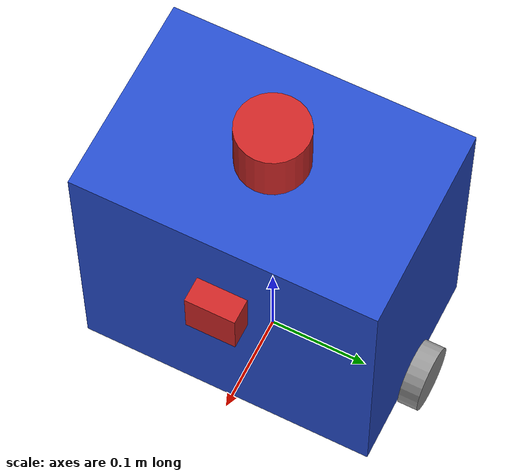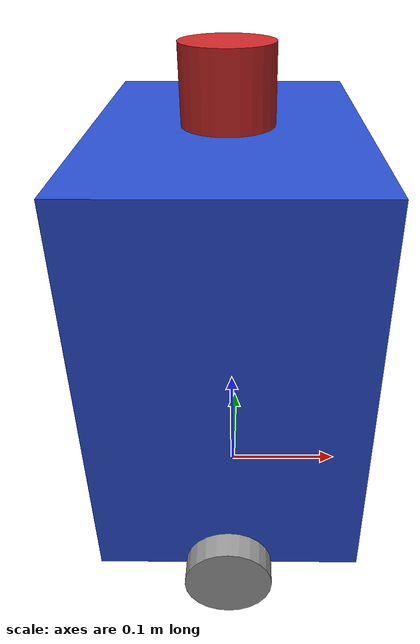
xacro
<?xml version="1.0"?>
<robot name="my_robot" xmlns:xacro="http://www.ros.org/wiki/xacro">

    <xacro:arg name="is_sim" default="true"/>
    <xacro:arg name="is_ignition" default="false"/>

    <xacro:include filename="common_properties.xacro" />
    <xacro:include filename="my_robot_homemade.xacro" />
    <xacro:include filename="robot_ros2_control.xacro" />
    <xacro:include filename="my_robot_gazebo.xacro" />

</robot>

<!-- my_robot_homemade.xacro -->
<robot xmlns:xacro="http://www.ros.org/wiki/xacro">
  <xacro:include filename="inertial_macros.xacro"/>
  <xacro:property name="base_length" value="0.20" />
  <xacro:property name="base_width" value="0.30" />
  <xacro:property name="base_height" value="0.30" />
  <xacro:property name="base_mass" value="1.0" />

  <xacro:property name="wheel_mass" value="0.3" />
  <xacro:property name="wheel_radius" value="0.033" />
  <xacro:property name="wheel_length" value="0.02" />

  <xacro:property name="caster_wheel_mass" value="0.1" />
  <xacro:property name="caster_wheel_radius" value="${wheel_radius / 2.0}" />

  <!-- BASE FOOTPRINT LINK -->
  <link name="base_footprint" />

  <!-- BASE LINK -->
  <link name="base_link">
    <visual>
      <geometry>
        <box size="${base_length} ${base_width} ${base_height}" />
      </geometry>
      <origin xyz="0 0 ${base_height / 2.0}" rpy="0 0 0" />
      <material name="blue" />
    </visual>

    <collision>
      <geometry>
        <box size="${base_length} ${base_width} ${base_height}" />
      </geometry>
      <origin xyz="0 0 ${base_height / 2.0}" rpy="0 0 0" />
    </collision>

    <inertial>
      <origin xyz="0 0 ${base_height / 2.0}" rpy="0 0 0"/>
      <mass value="${base_mass}"/>
      <inertia ixx="${base_mass / 12.0 * (base_width*base_width + base_height*base_height)}" ixy="0.0" ixz="0.0" iyy="${base_mass / 12.0 * (base_length*base_length + base_height*base_height)}" iyz="0.0" izz="${base_mass / 12.0 * (base_width*base_width + base_length*base_length)}"/>
    </inertial>

  </link>

  <!-- WHEEL MACRO -->
  <xacro:macro name="wheel_link" params="prefix">
    <link name="${prefix}_wheel_link">
      <visual>
        <geometry>
          <cylinder radius="${wheel_radius}" length="${wheel_length}" />
        </geometry>
        <origin xyz="0 0 0" rpy="${pi / 2.0} 0 0" />
        <material name="grey" />
      </visual>

      <collision>
        <geometry>
          <cylinder radius="${wheel_radius}" length="${wheel_length}" />
        </geometry>
        <origin xyz="0 0 0" rpy="${pi / 2.0} 0 0" />
      </collision>

      <inertial>
        <origin xyz="0 0 0" rpy="${pi/2} 0 0"/>
        <mass value="${wheel_mass}"/>
        <inertia ixx="${wheel_mass / 12.0 * (3*wheel_radius*wheel_radius + wheel_length*wheel_length)}" ixy="0.0" ixz="0.0" iyy="${wheel_mass / 12.0 * (3*wheel_radius*wheel_radius + wheel_length*wheel_length)}" iyz="0.0" izz="${wheel_mass / 2.0 * wheel_radius*wheel_radius}"/>
      </inertial>
    </link>
  </xacro:macro>

  <xacro:wheel_link prefix="right" />
  <xacro:wheel_link prefix="left" />

  <!-- FRONT CASTER WHEEL -->
  <link name="front_caster_wheel_link">
    <visual>
      <geometry>
        <sphere radius="${caster_wheel_radius}" />
      </geometry>
      <origin xyz="0 0 0" rpy="0 0 0" />
      <material name="grey" />
    </visual>

    <collision>
      <geometry>
        <sphere radius="${caster_wheel_radius}" />
      </geometry>
      <origin xyz="0 0 0" rpy="0 0 0" />
    </collision>

    <inertial>
      <origin xyz="0 0 0" rpy="0 0 0"/>
      <mass value="${caster_wheel_mass}"/>
      <inertia ixx="${caster_wheel_mass * 0.4 * (caster_wheel_radius * caster_wheel_radius)}" ixy="0.0" ixz="0.0" iyy="${caster_wheel_mass * 0.4 * (caster_wheel_radius * caster_wheel_radius)}" iyz="0.0" izz="${caster_wheel_mass * 0.4 * (caster_wheel_radius * caster_wheel_radius)}"/>
    </inertial>
  </link>

  <!-- REAR CASTER WHEEL -->
  <link name="rear_caster_wheel_link">
    <visual>
      <geometry>
        <sphere radius="${caster_wheel_radius}" />
      </geometry>
      <origin xyz="0 0 0" rpy="0 0 0" />
      <material name="grey" />
    </visual>

    <collision>
      <geometry>
        <sphere radius="${caster_wheel_radius}" />
      </geometry>
      <origin xyz="0 0 0" rpy="0 0 0" />
    </collision>

    <inertial>
      <origin xyz="0 0 0" rpy="0 0 0"/>
      <mass value="${caster_wheel_mass}"/>
      <inertia ixx="${caster_wheel_mass * 0.4 * (caster_wheel_radius * caster_wheel_radius)}" ixy="0.0" ixz="0.0" iyy="${caster_wheel_mass * 0.4 * (caster_wheel_radius * caster_wheel_radius)}" iyz="0.0" izz="${caster_wheel_mass * 0.4 * (caster_wheel_radius * caster_wheel_radius)}"/>
    </inertial>
  </link>

  <!-- IMU LINK -->
  <link name= "imu_link">
    <visual>
      <geometry>
        <box size ="0.0212 0.0164 0.0033"/>
      </geometry>
      <material name="red"/>
    </visual>
    <collision>
      <geometry>
        <box size ="0.0212 0.0164 0.0033"/>
      </geometry>
      <material name="red"/>
    </collision>
    <xacro:inertial_box mass="0.0021" x="0.0212" y="0.0164" z="0.0033">
      <origin xyz="0 0 0" rpy="0 0 0"/>
    </xacro:inertial_box>
  </link>

  <!-- LIDAR LINK -->
  <link name="laser_link">
    <visual>
      <geometry>
        <cylinder radius="0.035" length ="0.057"/>
      </geometry>
      <material name="red"/>
    </visual>
    <collision>
      <geometry>
        <cylinder radius="0.035" length ="0.057"/>
      </geometry>
    </collision>
    <xacro:inertial_cylinder mass="0.1" length="0.057" radius="0.035">
      <origin xyz="0 0 0" rpy="0 0 0"/>
    </xacro:inertial_cylinder>
  </link>

  <!-- CAMERA LINK -->
  <link name="camera_link">
    <visual>
      <geometry>
        <box size="0.05 0.05 0.05"/>
      </geometry>
      <material name="red"/>
    </visual>
    <collision>
      <geometry>
        <box size="0.05 0.05 0.05"/>
      </geometry>
    </collision>
    <xacro:inertial_box mass="0.1" x="0.05" y="0.05" z="0.05">
      <origin xyz="0 0 0" rpy="0 0 0"/>
    </xacro:inertial_box>
  </link>

  <!-- JOINTS -->
  <joint name="base_joint" type="fixed">
    <parent link="base_footprint" />
    <child link="base_link" />
    <origin xyz="0 0 ${wheel_radius}" rpy="0 0 0"/>
  </joint>

  <joint name="right_wheel_joint" type="continuous">
    <parent link="base_link" />
    <child link="right_wheel_link" />
    <origin xyz="0 ${-(base_width + wheel_length) / 2.0} 0" rpy="0 0 0" />
    <axis xyz="0 1 0" />
  </joint>

  <joint name="left_wheel_joint" type="continuous">
    <parent link="base_link" />
    <child link="left_wheel_link" />
    <origin xyz="0 ${(base_width + wheel_length) / 2.0} 0" rpy="0 0 0" />
    <axis xyz="0 1 0" />
  </joint>

  <joint name="front_caster_wheel_joint" type="fixed">
    <parent link="base_link" />
    <child link="front_caster_wheel_link" />
    <origin xyz="${base_length / 3.0} 0 ${-caster_wheel_radius}" rpy="0 0 0" />
  </joint>

  <joint name="rear_caster_wheel_joint" type="fixed">
    <parent link="base_link" />
    <child link="rear_caster_wheel_link" />
    <origin xyz="${-base_length / 3.0} 0 ${-caster_wheel_radius}" rpy="0 0 0" />
  </joint>

  <joint name="imu_joint" type ="fixed">
    <parent link ="base_link"/>
    <child link ="imu_link"/>
    <origin xyz="0.0 0 ${base_height + 0.0212 / 2.0}" rpy="0 0 0"/>
  </joint>

  <joint name="laser_joint" type ="fixed">
    <parent link ="base_link"/>
    <child link ="laser_link"/>
    <axis xyz="0 0 0" />
    <origin xyz="0 0 ${base_height + 0.057 / 2.0}" rpy="0 0 0"/>
  </joint>

  <joint name="camera_joint" type="fixed">
    <parent link="base_link"/>
    <child link="camera_link"/>
    <!-- Positioned near the front edge of the top plate, facing forward -->
    <origin xyz="${base_length/2} 0 ${base_height - 0.1}" rpy="0 0 0"/>
  </joint>

</robot>
